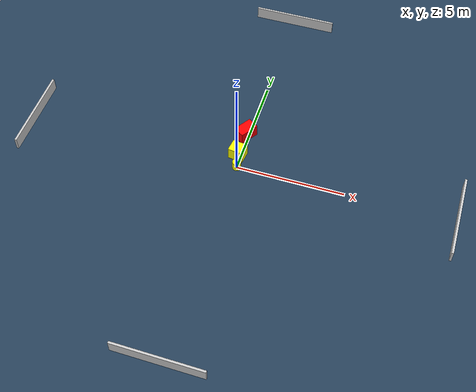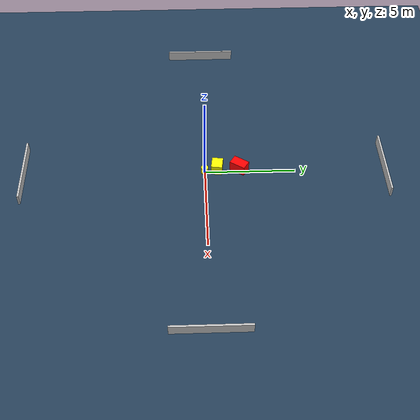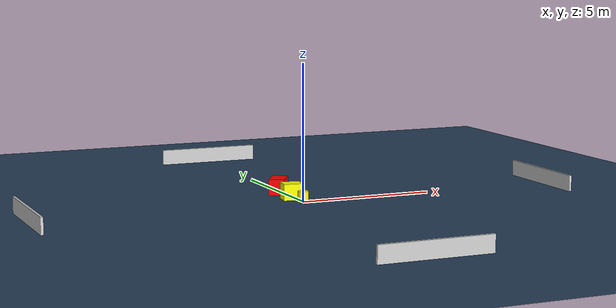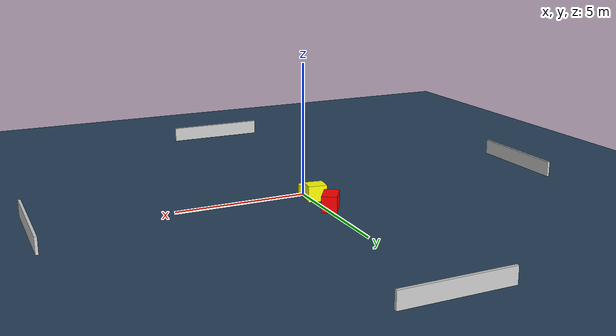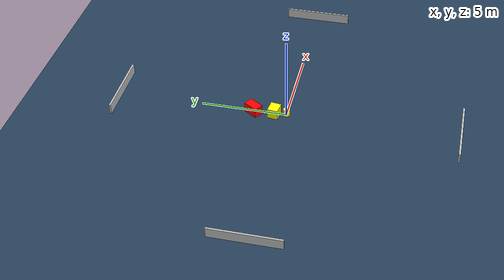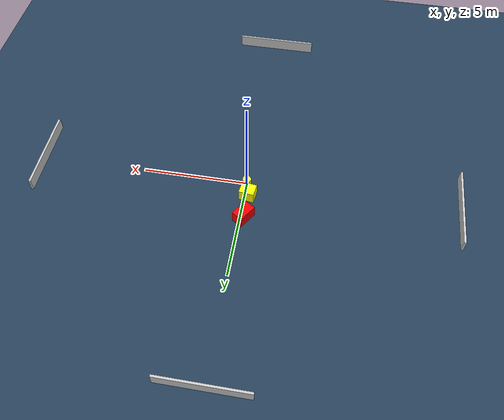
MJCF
<?xml version="1.0" ?>
<mujoco model="generated_environment">
  <option timestep="0.01" integrator="RK4" cone="elliptic"/>
  <default>
    <geom density="1"/>
  </default>
  <asset>
    <texture builtin="gradient" height="3072" name="skybox" rgb1="0.3 0.5 0.7" rgb2="0 0 0" type="skybox" width="512"/>
    <texture builtin="checker" height="300" name="groundplane" rgb1="0.2 0.3 0.4" rgb2="0.1 0.2 0.3" type="2d" width="300"/>
    <material name="groundplane" reflectance="0.2" texrepeat="5 5" texture="groundplane"/>
  </asset>
  <worldbody>
    <light dir="0 0 -1" directional="true" pos="0 0 1.5"/>
    <geom condim="3" friction="0.5 0.005 0.001" material="groundplane" name="floor" pos="0 0 0" size="0 0 0.05" type="plane"/>
    <body name="walls">
      <geom name="wall_1" condim="4" pos="-10.0 0.0 0.3" rgba="0.800000011920929 0.800000011920929 0.800000011920929 1.0" size="0.05 2.0 0.3" type="box"/>
      <geom name="wall_2" condim="4" pos="10.0 0.0 0.3" rgba="0.800000011920929 0.800000011920929 0.800000011920929 1.0" size="0.05 2.0 0.3" type="box"/>
      <geom name="wall_3" condim="4" pos="0.0 -10.0 0.3" rgba="0.800000011920929 0.800000011920929 0.800000011920929 1.0" size="2.0 0.05 0.3" type="box"/>
      <geom name="wall_4" condim="4" pos="0.0 10.0 0.3" rgba="0.800000011920929 0.800000011920929 0.800000011920929 1.0" size="2.0 0.05 0.3" type="box"/>
    </body>
    <body name="robot">
      <joint name="joint_x" type="slide" pos="0 0 0" axis="1 0 0"/>
      <joint name="joint_y" type="slide" pos="0 0 0" axis="0 1 0"/>
      <geom name="robot" type="cylinder" pos="0.0 0.0 0.2" size="0.2 0.2 0.0" mass="5.0" friction="1.0 0.005 0.0001" condim="4" rgba="1.0 1.0 0.0 1.0"/>
    </body>
    <body name="obstacle_1_movable">
      <geom name="obstacle_1_movable" condim="4" pos="-0.16384842841189046 0.6883698782946016 0.3" euler="0 0 262.5189515515744" friction="0.0 0.005 0.001" rgba="1.0 1.0 0.0 1.0" size="0.30114047821533 0.3553780821705669 0.3" type="box" mass="0.1"/>
      <joint type="free"/>
    </body>
    <body name="obstacle_2_static">
      <geom name="obstacle_2_static" condim="4" pos="-0.1680294513222073 1.925283868112771 0.3" euler="0 0 326.71396947945675" friction="0.0 0.005 0.001" rgba="1.0 0.0 0.0 1.0" size="0.2805739638101219 0.45278882604959925 0.3" type="box"/>
    </body>
  </worldbody>
  <actuator>
    <motor name="actuator_x" joint="joint_x" gear="1" ctrlrange="-1 1"/>
    <motor name="actuator_y" joint="joint_y" gear="1" ctrlrange="-1 1"/>
  </actuator>
</mujoco>
